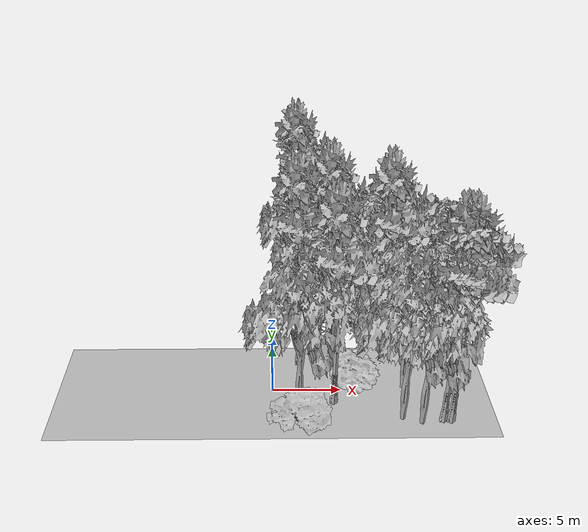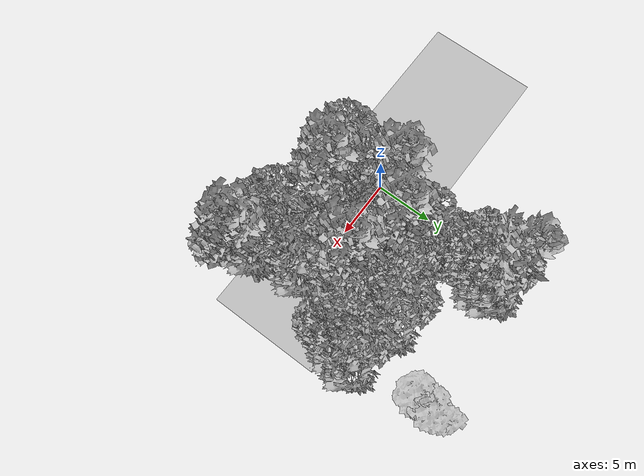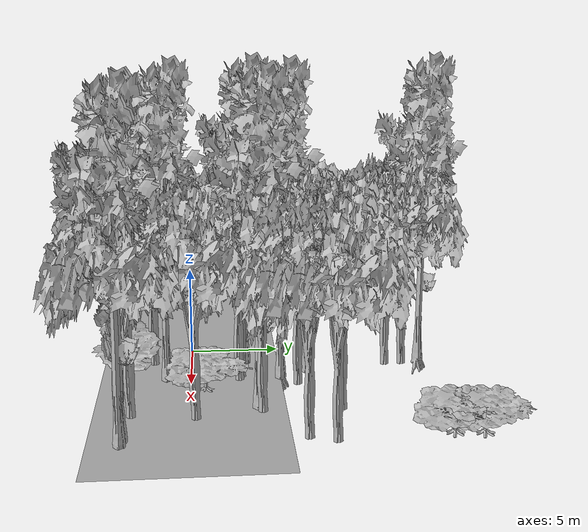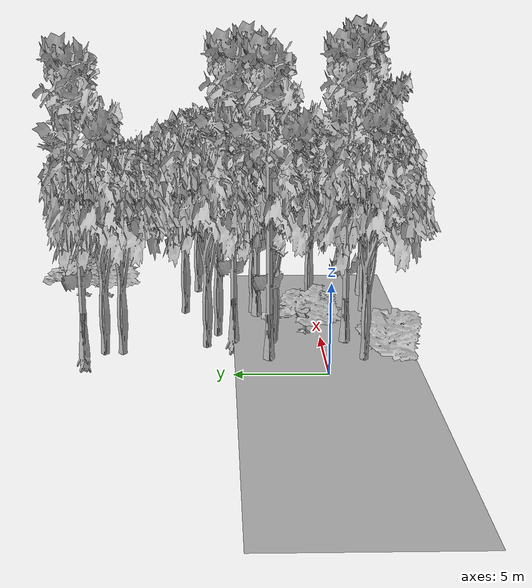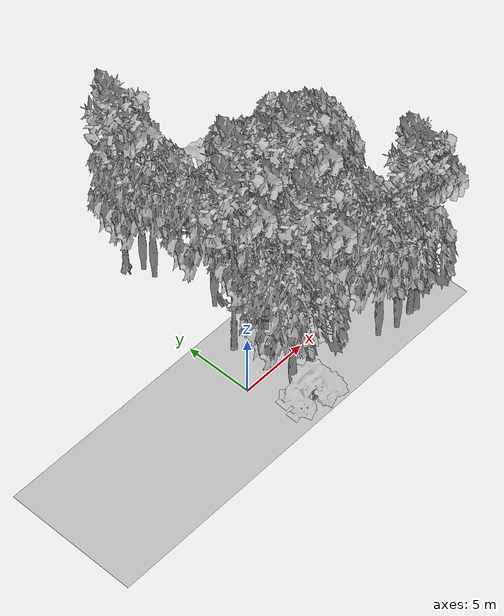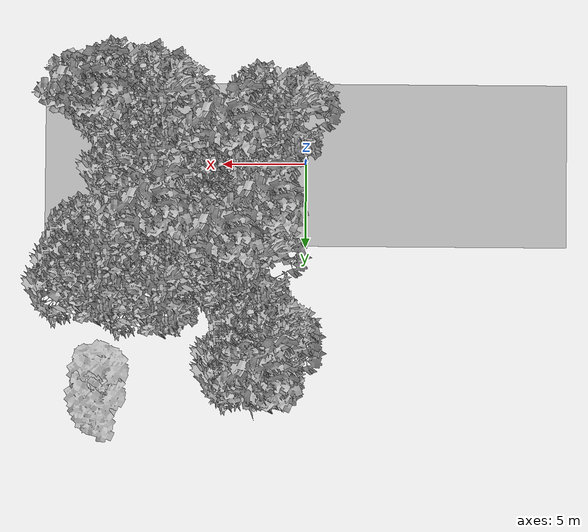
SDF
<sdf version="1.7">
 <world name="default">
  <model name="ground_plane">
   <static>1</static>
   <link name="link">
    <collision name="collision">
     <pose>-50 0 0 0 -0 0</pose>
     <geometry><plane><normal>0 0 1</normal><size>100 100</size></plane></geometry>
     <surface><contact><ode><min_depth>0.01</min_depth><max_vel>0</max_vel></ode></contact></surface>
    </collision>
    <visual name="grass">
     <cast_shadows>0</cast_shadows>
     <geometry>
      <mesh>
       <scale>0.5814285714285714 0.18142857142857144 0.1</scale>
       <uri>file://grass_plane/meshes/grass_plane.dae</uri>
      </mesh>
     </geometry>
    </visual>
   </link>
  </model>
  <model name="Tree 1">
   <static>1</static>
   <pose>2.039314229025379 3.0420164077007037 0 1.57079 -0 0</pose>
   <link name="link">
    <collision name="collision">
     <geometry><mesh><scale>3.5 5 3.5</scale><uri>model://tree_9/meshes/tree_9.obj</uri></mesh></geometry>
    </collision>
    <visual name="visual">
     <geometry><mesh><scale>3.5 5 3.5</scale><uri>model://tree_9/meshes/tree_9.obj</uri></mesh></geometry>
    </visual>
   </link>
  </model>
  <model name="Tree 7">
   <static>1</static>
   <pose>2.3119024017315937 12.992119698907906 0 1.57079 -0 0</pose>
   <link name="link">
    <collision name="collision">
     <geometry><mesh><scale>3.5 5 3.5</scale><uri>model://tree_9/meshes/tree_9.obj</uri></mesh></geometry>
    </collision>
    <visual name="visual">
     <geometry><mesh><scale>3.5 5 3.5</scale><uri>model://tree_9/meshes/tree_9.obj</uri></mesh></geometry>
    </visual>
   </link>
  </model>
  <model name="Tree 16">
   <static>1</static>
   <pose>8.859045355864367 3.6478221776824995 0 1.57079 -0 0</pose>
   <link name="link">
    <collision name="collision">
     <geometry><mesh><scale>3.5 5 3.5</scale><uri>model://tree_2/meshes/tree_2.obj</uri></mesh></geometry>
    </collision>
    <visual name="visual">
     <geometry><mesh><scale>3.5 5 3.5</scale><uri>model://tree_2/meshes/tree_2.obj</uri></mesh></geometry>
    </visual>
   </link>
  </model>
  <model name="Tree 47">
   <static>1</static>
   <pose>12.60793005630989 6.976330587104432 0 1.57079 -0 0</pose>
   <link name="link">
    <collision name="collision">
     <geometry><mesh><scale>3.5 5 3.5</scale><uri>model://tree_2/meshes/tree_2.obj</uri></mesh></geometry>
    </collision>
    <visual name="visual">
     <geometry><mesh><scale>3.5 5 3.5</scale><uri>model://tree_2/meshes/tree_2.obj</uri></mesh></geometry>
    </visual>
   </link>
  </model>
  <model name="Tree 50">
   <static>1</static>
   <pose>10.318379455024903 -3.429280615081691 0 1.57079 -0 0</pose>
   <link name="link">
    <collision name="collision">
     <geometry><mesh><scale>3.5 5 3.5</scale><uri>model://tree_2/meshes/tree_2.obj</uri></mesh></geometry>
    </collision>
    <visual name="visual">
     <geometry><mesh><scale>3.5 5 3.5</scale><uri>model://tree_2/meshes/tree_2.obj</uri></mesh></geometry>
    </visual>
   </link>
  </model>
  <model name="Tree 54">
   <static>1</static>
   <pose>8.91690695359948 7.684264308920508 0 1.57079 -0 0</pose>
   <link name="link">
    <collision name="collision">
     <geometry><mesh><scale>3.5 5 3.5</scale><uri>model://tree_2/meshes/tree_2.obj</uri></mesh></geometry>
    </collision>
    <visual name="visual">
     <geometry><mesh><scale>3.5 5 3.5</scale><uri>model://tree_2/meshes/tree_2.obj</uri></mesh></geometry>
    </visual>
   </link>
  </model>
  <model name="Tree 58">
   <static>1</static>
   <pose>4.384218980427015 -1.317225604091126 0 1.57079 -0 0</pose>
   <link name="link">
    <collision name="collision">
     <geometry><mesh><scale>3.5 5 3.5</scale><uri>model://tree_9/meshes/tree_9.obj</uri></mesh></geometry>
    </collision>
    <visual name="visual">
     <geometry><mesh><scale>3.5 5 3.5</scale><uri>model://tree_9/meshes/tree_9.obj</uri></mesh></geometry>
    </visual>
   </link>
  </model>
  <model name="Tree 79">
   <static>1</static>
   <pose>8.500411978442976 3.4660484276542967 0 1.57079 -0 0</pose>
   <link name="link">
    <collision name="collision">
     <geometry><mesh><scale>3.5 5 3.5</scale><uri>model://tree_9/meshes/tree_9.obj</uri></mesh></geometry>
    </collision>
    <visual name="visual">
     <geometry><mesh><scale>3.5 5 3.5</scale><uri>model://tree_9/meshes/tree_9.obj</uri></mesh></geometry>
    </visual>
   </link>
  </model>
  <model name="Tree 86">
   <static>1</static>
   <pose>9.017504990806621 -2.986560505224505 0 1.57079 -0 0</pose>
   <link name="link">
    <collision name="collision">
     <geometry><mesh><scale>3.5 5 3.5</scale><uri>model://tree_2/meshes/tree_2.obj</uri></mesh></geometry>
    </collision>
    <visual name="visual">
     <geometry><mesh><scale>3.5 5 3.5</scale><uri>model://tree_2/meshes/tree_2.obj</uri></mesh></geometry>
    </visual>
   </link>
  </model>
  <model name="Tree 111">
   <static>1</static>
   <pose>2.7975555146409192 11.90350581291263 0 1.57079 -0 0</pose>
   <link name="link">
    <collision name="collision">
     <geometry><mesh><scale>3.5 5 3.5</scale><uri>model://tree_2/meshes/tree_2.obj</uri></mesh></geometry>
    </collision>
    <visual name="visual">
     <geometry><mesh><scale>3.5 5 3.5</scale><uri>model://tree_2/meshes/tree_2.obj</uri></mesh></geometry>
    </visual>
   </link>
  </model>
  <model name="Tree 112">
   <static>1</static>
   <pose>11.917217006993688 -3.232012808977739 0 1.57079 -0 0</pose>
   <link name="link">
    <collision name="collision">
     <geometry><mesh><scale>3.5 5 3.5</scale><uri>model://tree_9/meshes/tree_9.obj</uri></mesh></geometry>
    </collision>
    <visual name="visual">
     <geometry><mesh><scale>3.5 5 3.5</scale><uri>model://tree_9/meshes/tree_9.obj</uri></mesh></geometry>
    </visual>
   </link>
  </model>
  <model name="Tree 123">
   <static>1</static>
   <pose>2.8167179759622556 10.939879128910132 0 1.57079 -0 0</pose>
   <link name="link">
    <collision name="collision">
     <geometry><mesh><scale>3.5 5 3.5</scale><uri>model://tree_2/meshes/tree_2.obj</uri></mesh></geometry>
    </collision>
    <visual name="visual">
     <geometry><mesh><scale>3.5 5 3.5</scale><uri>model://tree_2/meshes/tree_2.obj</uri></mesh></geometry>
    </visual>
   </link>
  </model>
  <model name="Tree 124">
   <static>1</static>
   <pose>12.161510082288785 12.783844459694194 0 1.57079 -0 0</pose>
   <link name="link">
    <collision name="collision">
     <geometry><mesh><scale>4 2.5 4</scale><uri>model://tree_1/meshes/tree_1.obj</uri></mesh></geometry>
    </collision>
    <visual name="visual">
     <geometry><mesh><scale>4 2.5 4</scale><uri>model://tree_1/meshes/tree_1.obj</uri></mesh></geometry>
    </visual>
   </link>
  </model>
  <model name="Tree 136">
   <static>1</static>
   <pose>12.127241845661473 5.675889713754572 0 1.57079 -0 0</pose>
   <link name="link">
    <collision name="collision">
     <geometry><mesh><scale>3.5 5 3.5</scale><uri>model://tree_2/meshes/tree_2.obj</uri></mesh></geometry>
    </collision>
    <visual name="visual">
     <geometry><mesh><scale>3.5 5 3.5</scale><uri>model://tree_2/meshes/tree_2.obj</uri></mesh></geometry>
    </visual>
   </link>
  </model>
  <model name="Tree 150">
   <static>1</static>
   <pose>12.44990435616576 -3.2931317493103744 0 1.57079 -0 0</pose>
   <link name="link">
    <collision name="collision">
     <geometry><mesh><scale>3.5 5 3.5</scale><uri>model://tree_9/meshes/tree_9.obj</uri></mesh></geometry>
    </collision>
    <visual name="visual">
     <geometry><mesh><scale>3.5 5 3.5</scale><uri>model://tree_9/meshes/tree_9.obj</uri></mesh></geometry>
    </visual>
   </link>
  </model>
  <model name="Tree 161">
   <static>1</static>
   <pose>9.505900567495871 0.26337598514890637 0 1.57079 -0 0</pose>
   <link name="link">
    <collision name="collision">
     <geometry><mesh><scale>3.5 5 3.5</scale><uri>model://tree_2/meshes/tree_2.obj</uri></mesh></geometry>
    </collision>
    <visual name="visual">
     <geometry><mesh><scale>3.5 5 3.5</scale><uri>model://tree_2/meshes/tree_2.obj</uri></mesh></geometry>
    </visual>
   </link>
  </model>
  <model name="Tree 176">
   <static>1</static>
   <pose>4.1148573117052365 2.7355764240144076 0 1.57079 -0 0</pose>
   <link name="link">
    <collision name="collision">
     <geometry><mesh><scale>3.5 5 3.5</scale><uri>model://tree_2/meshes/tree_2.obj</uri></mesh></geometry>
    </collision>
    <visual name="visual">
     <geometry><mesh><scale>3.5 5 3.5</scale><uri>model://tree_2/meshes/tree_2.obj</uri></mesh></geometry>
    </visual>
   </link>
  </model>
  <model name="Tree 209">
   <static>1</static>
   <pose>5.366479014317072 5.742799118642257 0 1.57079 -0 0</pose>
   <link name="link">
    <collision name="collision">
     <geometry><mesh><scale>3.5 5 3.5</scale><uri>model://tree_2/meshes/tree_2.obj</uri></mesh></geometry>
    </collision>
    <visual name="visual">
     <geometry><mesh><scale>3.5 5 3.5</scale><uri>model://tree_2/meshes/tree_2.obj</uri></mesh></geometry>
    </visual>
   </link>
  </model>
  <model name="Tree 214">
   <static>1</static>
   <pose>3.683329467382201 6.3547986719127465 0 1.57079 -0 0</pose>
   <link name="link">
    <collision name="collision">
     <geometry><mesh><scale>3.5 5 3.5</scale><uri>model://tree_2/meshes/tree_2.obj</uri></mesh></geometry>
    </collision>
    <visual name="visual">
     <geometry><mesh><scale>3.5 5 3.5</scale><uri>model://tree_2/meshes/tree_2.obj</uri></mesh></geometry>
    </visual>
   </link>
  </model>
  <model name="Tree 215">
   <static>1</static>
   <pose>5.828567221295444 0.796130157947303 0 1.57079 -0 0</pose>
   <link name="link">
    <collision name="collision">
     <geometry><mesh><scale>4 2.5 4</scale><uri>model://tree_1/meshes/tree_1.obj</uri></mesh></geometry>
    </collision>
    <visual name="visual">
     <geometry><mesh><scale>4 2.5 4</scale><uri>model://tree_1/meshes/tree_1.obj</uri></mesh></geometry>
    </visual>
   </link>
  </model>
  <model name="Tree 220">
   <static>1</static>
   <pose>1.9667962872569476 -3.7795458956016397 0 1.57079 -0 0</pose>
   <link name="link">
    <collision name="collision">
     <geometry><mesh><scale>3 2 3</scale><uri>model://tree_3/meshes/tree_3.obj</uri></mesh></geometry>
    </collision>
    <visual name="visual">
     <geometry><mesh><scale>3 2 3</scale><uri>model://tree_3/meshes/tree_3.obj</uri></mesh></geometry>
    </visual>
   </link>
  </model>
  <model name="Tree 234">
   <static>1</static>
   <pose>4.511395607756164 2.61765135073923 0 1.57079 -0 0</pose>
   <link name="link">
    <collision name="collision">
     <geometry><mesh><scale>3.5 5 3.5</scale><uri>model://tree_2/meshes/tree_2.obj</uri></mesh></geometry>
    </collision>
    <visual name="visual">
     <geometry><mesh><scale>3.5 5 3.5</scale><uri>model://tree_2/meshes/tree_2.obj</uri></mesh></geometry>
    </visual>
   </link>
  </model>
  <model name="Tree 241">
   <static>1</static>
   <pose>4.504250795558853 4.889236369957402 0 1.57079 -0 0</pose>
   <link name="link">
    <collision name="collision">
     <geometry><mesh><scale>3.5 5 3.5</scale><uri>model://tree_9/meshes/tree_9.obj</uri></mesh></geometry>
    </collision>
    <visual name="visual">
     <geometry><mesh><scale>3.5 5 3.5</scale><uri>model://tree_9/meshes/tree_9.obj</uri></mesh></geometry>
    </visual>
   </link>
  </model>
  <model name="Tree 242">
   <static>1</static>
   <pose>1.823791030247257 -2.1039734483044654 0 1.57079 -0 0</pose>
   <link name="link">
    <collision name="collision">
     <geometry><mesh><scale>3.5 5 3.5</scale><uri>model://tree_2/meshes/tree_2.obj</uri></mesh></geometry>
    </collision>
    <visual name="visual">
     <geometry><mesh><scale>3.5 5 3.5</scale><uri>model://tree_2/meshes/tree_2.obj</uri></mesh></geometry>
    </visual>
   </link>
  </model>
  <model name="Tree 262">
   <static>1</static>
   <pose>12.317599034680164 14.218659186107363 0 1.57079 -0 0</pose>
   <link name="link">
    <collision name="collision">
     <geometry><mesh><scale>4 2.5 4</scale><uri>model://tree_1/meshes/tree_1.obj</uri></mesh></geometry>
    </collision>
    <visual name="visual">
     <geometry><mesh><scale>4 2.5 4</scale><uri>model://tree_1/meshes/tree_1.obj</uri></mesh></geometry>
    </visual>
   </link>
  </model>
 </world>
</sdf>
